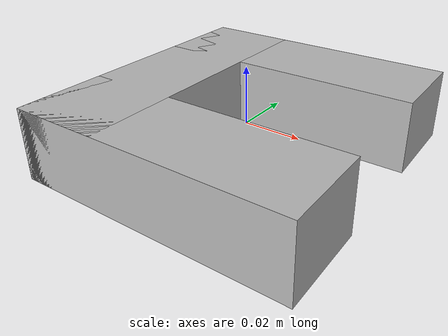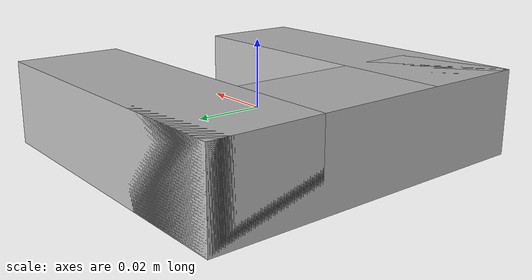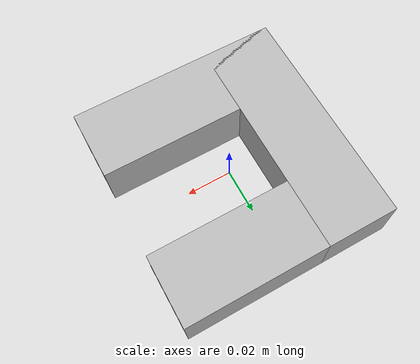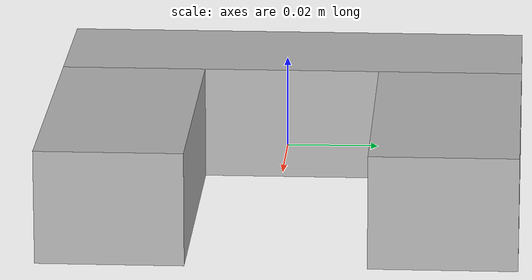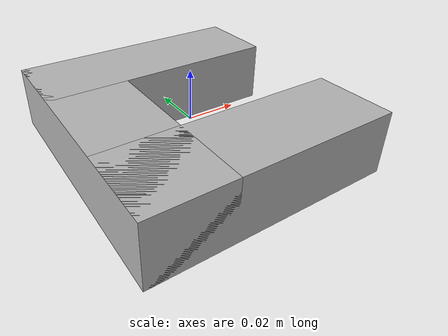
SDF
<?xml version="1.0"?>
<sdf version="1.7">
  <model name="push_c_glyph_controller">
    <link name="c_glyph_base">
      <inertial><pose>-0.011240 0 0 0 0 0</pose><mass>0.09999999999999998</mass>
        <inertia><ixx>0.000123706</ixx><iyy>0.000082551</iyy><izz>0.000195841</izz><ixy>0</ixy><ixz>0</ixz><iyz>0</iyz></inertia></inertial>
      <visual name="spine_visual"><pose>-0.0323 0.0 0.0 0 0 0</pose>
        <geometry><box><size>0.032 0.103 0.025</size></box></geometry>
      </visual>
      <collision name="spine_collision"><pose>-0.0323 0.0 0.0 0 0 0</pose>
        <geometry><box><size>0.032 0.103 0.025</size></box></geometry>
        <surface><friction><ode><mu>0.3</mu><mu2>0.3</mu2></ode></friction></surface>
        <drake:proximity_properties><drake:mu_static>0.3</drake:mu_static><drake:mu_dynamic>0.3</drake:mu_dynamic></drake:proximity_properties>
      </collision>
      <visual name="top_bar_visual"><pose>0.0 0.0355 0.0 0 0 0</pose>
        <geometry><box><size>0.0966 0.032 0.025</size></box></geometry>
      </visual>
      <collision name="top_bar_collision"><pose>0.0 0.0355 0.0 0 0 0</pose>
        <geometry><box><size>0.0966 0.032 0.025</size></box></geometry>
        <surface><friction><ode><mu>0.3</mu><mu2>0.3</mu2></ode></friction></surface>
        <drake:proximity_properties><drake:mu_static>0.3</drake:mu_static><drake:mu_dynamic>0.3</drake:mu_dynamic></drake:proximity_properties>
      </collision>
      <visual name="bot_bar_visual"><pose>0.0 -0.0355 0.0 0 0 0</pose>
        <geometry><box><size>0.0966 0.032 0.025</size></box></geometry>
      </visual>
      <collision name="bot_bar_collision"><pose>0.0 -0.0355 0.0 0 0 0</pose>
        <geometry><box><size>0.0966 0.032 0.025</size></box></geometry>
        <surface><friction><ode><mu>0.3</mu><mu2>0.3</mu2></ode></friction></surface>
        <drake:proximity_properties><drake:mu_static>0.3</drake:mu_static><drake:mu_dynamic>0.3</drake:mu_dynamic></drake:proximity_properties>
      </collision>
      <collision name="witness_spine"><pose>-0.0463 0.0 -0.0115 0 0 0</pose>
        <geometry><sphere><radius>0.001</radius></sphere></geometry></collision>
      <collision name="witness_top"><pose>0.0463 0.049499999999999995 -0.0115 0 0 0</pose>
        <geometry><sphere><radius>0.001</radius></sphere></geometry></collision>
      <collision name="witness_bot"><pose>0.0463 -0.049499999999999995 -0.0115 0 0 0</pose>
        <geometry><sphere><radius>0.001</radius></sphere></geometry></collision>
    </link>
  </model>
</sdf>
